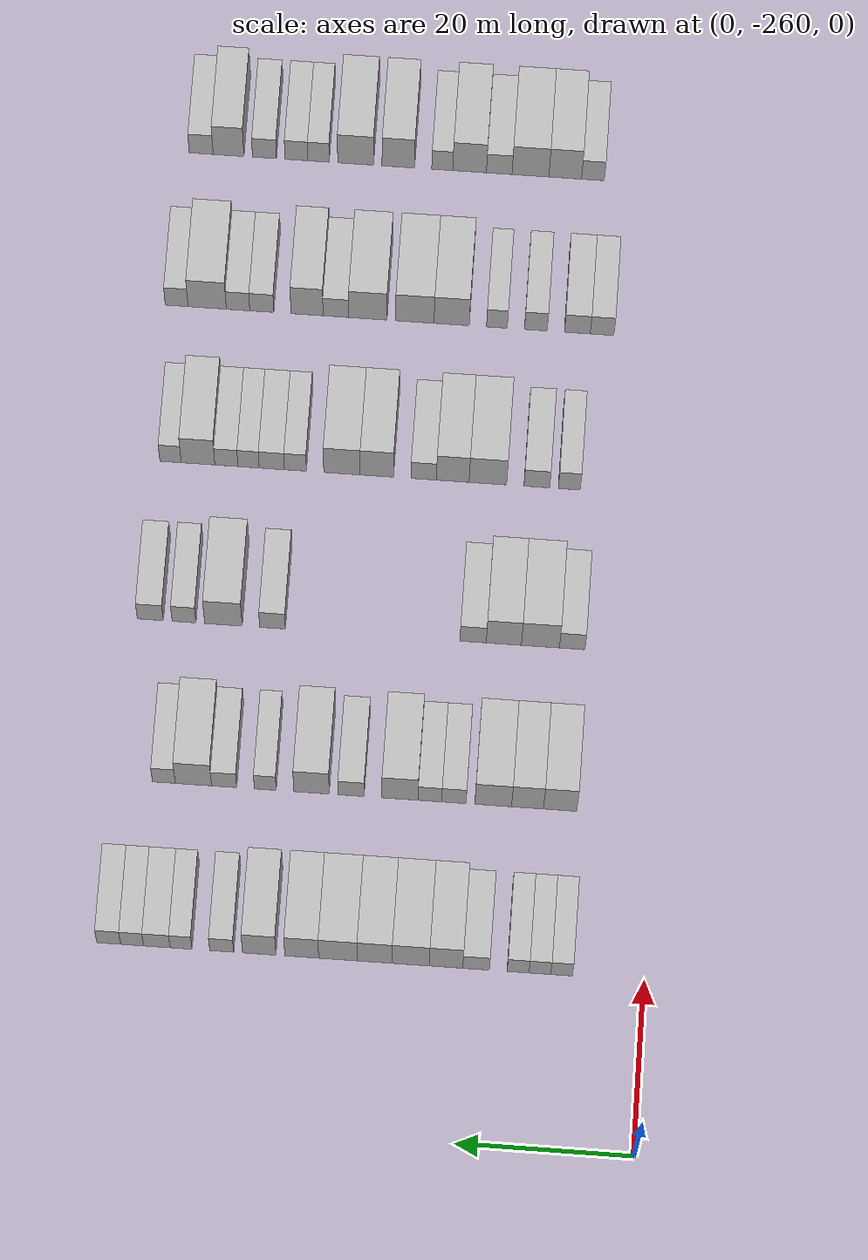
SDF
<sdf version="1.6">
 <world name="default">
  <model name="building_21">
   <static>1</static>
   <pose>25.0000 -250.6720 0 0.000000 0.000000 0.000000</pose>
   <link name="link">
    <pose>0 0 3.00 0 0 0</pose>
    <collision name="collision"><geometry><box><size>10.0000 2.4255 6.0000</size></box></geometry></collision>
    <visual name="visual">
     <cast_shadows>0</cast_shadows>
     <geometry><box><size>10.0000 2.4255 6.0000</size></box></geometry>
     <material>
      <script>
       <uri>model://HANNAS_wall/materials/scripts</uri>
       <uri>model://HANNAS_wall/materials/textures</uri>
       <name>vrc/HANNAS_wall</name>
      </script>
     </material>
    </visual>
   </link>
  </model>
  <model name="building_22">
   <static>1</static>
   <pose>25.0000 -248.2370 0 0.000000 0.000000 0.000000</pose>
   <link name="link">
    <pose>0 0 3.00 0 0 0</pose>
    <collision name="collision"><geometry><box><size>10.0000 2.4445 6.0000</size></box></geometry></collision>
    <visual name="visual">
     <cast_shadows>0</cast_shadows>
     <geometry><box><size>10.0000 2.4445 6.0000</size></box></geometry>
     <material>
      <script>
       <uri>model://HANNAS_wall/materials/scripts</uri>
       <uri>model://HANNAS_wall/materials/textures</uri>
       <name>vrc/HANNAS_wall</name>
      </script>
     </material>
    </visual>
   </link>
  </model>
  <model name="building_23">
   <static>1</static>
   <pose>25.0000 -245.7980 0 0.000000 0.000000 0.000000</pose>
   <link name="link">
    <pose>0 0 3.00 0 0 0</pose>
    <collision name="collision"><geometry><box><size>10.0000 2.4335 6.0000</size></box></geometry></collision>
    <visual name="visual">
     <cast_shadows>0</cast_shadows>
     <geometry><box><size>10.0000 2.4335 6.0000</size></box></geometry>
     <material>
      <script>
       <uri>model://HANNAS_wall/materials/scripts</uri>
       <uri>model://HANNAS_wall/materials/textures</uri>
       <name>vrc/HANNAS_wall</name>
      </script>
     </material>
    </visual>
   </link>
  </model>
  <model name="building_24">
   <static>1</static>
   <pose>25.0000 -241.0925 0 0.000000 0.000000 0.000000</pose>
   <link name="link">
    <pose>0 0 3.00 0 0 0</pose>
    <collision name="collision"><geometry><box><size>10.0000 2.9776 6.0000</size></box></geometry></collision>
    <visual name="visual">
     <cast_shadows>0</cast_shadows>
     <geometry><box><size>10.0000 2.9776 6.0000</size></box></geometry>
     <material>
      <script>
       <uri>model://HANNAS_wall/materials/scripts</uri>
       <uri>model://HANNAS_wall/materials/textures</uri>
       <name>vrc/HANNAS_wall</name>
      </script>
     </material>
    </visual>
   </link>
  </model>
  <model name="building_25">
   <static>1</static>
   <pose>25.0000 -237.7254 0 0.000000 0.000000 0.000000</pose>
   <link name="link">
    <pose>0 0 4.50 0 0 0</pose>
    <collision name="collision"><geometry><box><size>10.0000 3.7566 9.0000</size></box></geometry></collision>
    <visual name="visual">
     <cast_shadows>0</cast_shadows>
     <geometry><box><size>10.0000 3.7566 9.0000</size></box></geometry>
     <material>
      <script>
       <uri>model://HANNAS_wall/materials/scripts</uri>
       <uri>model://HANNAS_wall/materials/textures</uri>
       <name>vrc/HANNAS_wall</name>
      </script>
     </material>
    </visual>
   </link>
  </model>
  <model name="building_26">
   <static>1</static>
   <pose>25.0000 -233.7572 0 0.000000 0.000000 0.000000</pose>
   <link name="link">
    <pose>0 0 4.50 0 0 0</pose>
    <collision name="collision"><geometry><box><size>10.0000 4.1797 9.0000</size></box></geometry></collision>
    <visual name="visual">
     <cast_shadows>0</cast_shadows>
     <geometry><box><size>10.0000 4.1797 9.0000</size></box></geometry>
     <material>
      <script>
       <uri>model://HANNAS_wall/materials/scripts</uri>
       <uri>model://HANNAS_wall/materials/textures</uri>
       <name>vrc/HANNAS_wall</name>
      </script>
     </material>
    </visual>
   </link>
  </model>
  <model name="building_27">
   <static>1</static>
   <pose>25.0000 -229.7039 0 0.000000 0.000000 0.000000</pose>
   <link name="link">
    <pose>0 0 4.50 0 0 0</pose>
    <collision name="collision"><geometry><box><size>10.0000 3.9269 9.0000</size></box></geometry></collision>
    <visual name="visual">
     <cast_shadows>0</cast_shadows>
     <geometry><box><size>10.0000 3.9269 9.0000</size></box></geometry>
     <material>
      <script>
       <uri>model://HANNAS_wall/materials/scripts</uri>
       <uri>model://HANNAS_wall/materials/textures</uri>
       <name>vrc/HANNAS_wall</name>
      </script>
     </material>
    </visual>
   </link>
  </model>
  <model name="building_28">
   <static>1</static>
   <pose>25.0000 -225.5859 0 0.000000 0.000000 0.000000</pose>
   <link name="link">
    <pose>0 0 4.50 0 0 0</pose>
    <collision name="collision"><geometry><box><size>10.0000 4.3091 9.0000</size></box></geometry></collision>
    <visual name="visual">
     <cast_shadows>0</cast_shadows>
     <geometry><box><size>10.0000 4.3091 9.0000</size></box></geometry>
     <material>
      <script>
       <uri>model://HANNAS_wall/materials/scripts</uri>
       <uri>model://HANNAS_wall/materials/textures</uri>
       <name>vrc/HANNAS_wall</name>
      </script>
     </material>
    </visual>
   </link>
  </model>
  <model name="building_29">
   <static>1</static>
   <pose>25.0000 -221.5351 0 0.000000 0.000000 0.000000</pose>
   <link name="link">
    <pose>0 0 4.50 0 0 0</pose>
    <collision name="collision"><geometry><box><size>10.0000 3.7927 9.0000</size></box></geometry></collision>
    <visual name="visual">
     <cast_shadows>0</cast_shadows>
     <geometry><box><size>10.0000 3.7927 9.0000</size></box></geometry>
     <material>
      <script>
       <uri>model://HANNAS_wall/materials/scripts</uri>
       <uri>model://HANNAS_wall/materials/textures</uri>
       <name>vrc/HANNAS_wall</name>
      </script>
     </material>
    </visual>
   </link>
  </model>
  <model name="building_30">
   <static>1</static>
   <pose>25.0000 -216.7678 0 0.000000 0.000000 0.000000</pose>
   <link name="link">
    <pose>0 0 4.50 0 0 0</pose>
    <collision name="collision"><geometry><box><size>10.0000 3.7419 9.0000</size></box></geometry></collision>
    <visual name="visual">
     <cast_shadows>0</cast_shadows>
     <geometry><box><size>10.0000 3.7419 9.0000</size></box></geometry>
     <material>
      <script>
       <uri>model://HANNAS_wall/materials/scripts</uri>
       <uri>model://HANNAS_wall/materials/textures</uri>
       <name>vrc/HANNAS_wall</name>
      </script>
     </material>
    </visual>
   </link>
  </model>
  <model name="building_31">
   <static>1</static>
   <pose>25.0000 -212.5534 0 0.000000 0.000000 0.000000</pose>
   <link name="link">
    <pose>0 0 3.00 0 0 0</pose>
    <collision name="collision"><geometry><box><size>10.0000 2.6870 6.0000</size></box></geometry></collision>
    <visual name="visual">
     <cast_shadows>0</cast_shadows>
     <geometry><box><size>10.0000 2.6870 6.0000</size></box></geometry>
     <material>
      <script>
       <uri>model://HANNAS_wall/materials/scripts</uri>
       <uri>model://HANNAS_wall/materials/textures</uri>
       <name>vrc/HANNAS_wall</name>
      </script>
     </material>
    </visual>
   </link>
  </model>
  <model name="building_32">
   <static>1</static>
   <pose>25.0000 -207.9829 0 0.000000 0.000000 0.000000</pose>
   <link name="link">
    <pose>0 0 3.00 0 0 0</pose>
    <collision name="collision"><geometry><box><size>10.0000 2.4540 6.0000</size></box></geometry></collision>
    <visual name="visual">
     <cast_shadows>0</cast_shadows>
     <geometry><box><size>10.0000 2.4540 6.0000</size></box></geometry>
     <material>
      <script>
       <uri>model://HANNAS_wall/materials/scripts</uri>
       <uri>model://HANNAS_wall/materials/textures</uri>
       <name>vrc/HANNAS_wall</name>
      </script>
     </material>
    </visual>
   </link>
  </model>
  <model name="building_33">
   <static>1</static>
   <pose>25.0000 -205.2645 0 0.000000 0.000000 0.000000</pose>
   <link name="link">
    <pose>0 0 3.00 0 0 0</pose>
    <collision name="collision"><geometry><box><size>10.0000 2.9827 6.0000</size></box></geometry></collision>
    <visual name="visual">
     <cast_shadows>0</cast_shadows>
     <geometry><box><size>10.0000 2.9827 6.0000</size></box></geometry>
     <material>
      <script>
       <uri>model://HANNAS_wall/materials/scripts</uri>
       <uri>model://HANNAS_wall/materials/textures</uri>
       <name>vrc/HANNAS_wall</name>
      </script>
     </material>
    </visual>
   </link>
  </model>
  <model name="building_34">
   <static>1</static>
   <pose>25.0000 -202.4823 0 0.000000 0.000000 0.000000</pose>
   <link name="link">
    <pose>0 0 3.00 0 0 0</pose>
    <collision name="collision"><geometry><box><size>10.0000 2.5817 6.0000</size></box></geometry></collision>
    <visual name="visual">
     <cast_shadows>0</cast_shadows>
     <geometry><box><size>10.0000 2.5817 6.0000</size></box></geometry>
     <material>
      <script>
       <uri>model://HANNAS_wall/materials/scripts</uri>
       <uri>model://HANNAS_wall/materials/textures</uri>
       <name>vrc/HANNAS_wall</name>
      </script>
     </material>
    </visual>
   </link>
  </model>
  <model name="building_35">
   <static>1</static>
   <pose>25.0000 -199.8549 0 0.000000 0.000000 0.000000</pose>
   <link name="link">
    <pose>0 0 3.00 0 0 0</pose>
    <collision name="collision"><geometry><box><size>10.0000 2.6732 6.0000</size></box></geometry></collision>
    <visual name="visual">
     <cast_shadows>0</cast_shadows>
     <geometry><box><size>10.0000 2.6732 6.0000</size></box></geometry>
     <material>
      <script>
       <uri>model://HANNAS_wall/materials/scripts</uri>
       <uri>model://HANNAS_wall/materials/textures</uri>
       <name>vrc/HANNAS_wall</name>
      </script>
     </material>
    </visual>
   </link>
  </model>
  <model name="building_202">
   <static>1</static>
   <pose>44.0000 -249.3274 0 0.000000 0.000000 0.000000</pose>
   <link name="link">
    <pose>0 0 4.50 0 0 0</pose>
    <collision name="collision"><geometry><box><size>10.0000 3.7577 9.0000</size></box></geometry></collision>
    <visual name="visual">
     <cast_shadows>0</cast_shadows>
     <geometry><box><size>10.0000 3.7577 9.0000</size></box></geometry>
     <material>
      <script>
       <uri>model://HANNAS_wall/materials/scripts</uri>
       <uri>model://HANNAS_wall/materials/textures</uri>
       <name>vrc/HANNAS_wall</name>
      </script>
     </material>
    </visual>
   </link>
  </model>
  <model name="building_203">
   <static>1</static>
   <pose>44.0000 -245.6472 0 0.000000 0.000000 0.000000</pose>
   <link name="link">
    <pose>0 0 4.50 0 0 0</pose>
    <collision name="collision"><geometry><box><size>10.0000 3.6028 9.0000</size></box></geometry></collision>
    <visual name="visual">
     <cast_shadows>0</cast_shadows>
     <geometry><box><size>10.0000 3.6028 9.0000</size></box></geometry>
     <material>
      <script>
       <uri>model://HANNAS_wall/materials/scripts</uri>
       <uri>model://HANNAS_wall/materials/textures</uri>
       <name>vrc/HANNAS_wall</name>
      </script>
     </material>
    </visual>
   </link>
  </model>
  <model name="building_204">
   <static>1</static>
   <pose>44.0000 -241.7728 0 0.000000 0.000000 0.000000</pose>
   <link name="link">
    <pose>0 0 4.50 0 0 0</pose>
    <collision name="collision"><geometry><box><size>10.0000 4.1460 9.0000</size></box></geometry></collision>
    <visual name="visual">
     <cast_shadows>0</cast_shadows>
     <geometry><box><size>10.0000 4.1460 9.0000</size></box></geometry>
     <material>
      <script>
       <uri>model://HANNAS_wall/materials/scripts</uri>
       <uri>model://HANNAS_wall/materials/textures</uri>
       <name>vrc/HANNAS_wall</name>
      </script>
     </material>
    </visual>
   </link>
  </model>
  <model name="building_205">
   <static>1</static>
   <pose>44.0000 -237.3193 0 0.000000 0.000000 0.000000</pose>
   <link name="link">
    <pose>0 0 3.00 0 0 0</pose>
    <collision name="collision"><geometry><box><size>10.0000 2.7610 6.0000</size></box></geometry></collision>
    <visual name="visual">
     <cast_shadows>0</cast_shadows>
     <geometry><box><size>10.0000 2.7610 6.0000</size></box></geometry>
     <material>
      <script>
       <uri>model://HANNAS_wall/materials/scripts</uri>
       <uri>model://HANNAS_wall/materials/textures</uri>
       <name>vrc/HANNAS_wall</name>
      </script>
     </material>
    </visual>
   </link>
  </model>
  <model name="building_206">
   <static>1</static>
   <pose>44.0000 -234.5965 0 0.000000 0.000000 0.000000</pose>
   <link name="link">
    <pose>0 0 3.00 0 0 0</pose>
    <collision name="collision"><geometry><box><size>10.0000 2.6845 6.0000</size></box></geometry></collision>
    <visual name="visual">
     <cast_shadows>0</cast_shadows>
     <geometry><box><size>10.0000 2.6845 6.0000</size></box></geometry>
     <material>
      <script>
       <uri>model://HANNAS_wall/materials/scripts</uri>
       <uri>model://HANNAS_wall/materials/textures</uri>
       <name>vrc/HANNAS_wall</name>
      </script>
     </material>
    </visual>
   </link>
  </model>
  <model name="building_207">
   <static>1</static>
   <pose>44.0000 -231.2098 0 0.000000 0.000000 0.000000</pose>
   <link name="link">
    <pose>0 0 4.50 0 0 0</pose>
    <collision name="collision"><geometry><box><size>10.0000 4.0889 9.0000</size></box></geometry></collision>
    <visual name="visual">
     <cast_shadows>0</cast_shadows>
     <geometry><box><size>10.0000 4.0889 9.0000</size></box></geometry>
     <material>
      <script>
       <uri>model://HANNAS_wall/materials/scripts</uri>
       <uri>model://HANNAS_wall/materials/textures</uri>
       <name>vrc/HANNAS_wall</name>
      </script>
     </material>
    </visual>
   </link>
  </model>
  <model name="building_208">
   <static>1</static>
   <pose>44.0000 -225.6865 0 0.000000 0.000000 0.000000</pose>
   <link name="link">
    <pose>0 0 3.00 0 0 0</pose>
    <collision name="collision"><geometry><box><size>10.0000 2.9579 6.0000</size></box></geometry></collision>
    <visual name="visual">
     <cast_shadows>0</cast_shadows>
     <geometry><box><size>10.0000 2.9579 6.0000</size></box></geometry>
     <material>
      <script>
       <uri>model://HANNAS_wall/materials/scripts</uri>
       <uri>model://HANNAS_wall/materials/textures</uri>
       <name>vrc/HANNAS_wall</name>
      </script>
     </material>
    </visual>
   </link>
  </model>
  <model name="building_209">
   <static>1</static>
   <pose>44.0000 -221.2067 0 0.000000 0.000000 0.000000</pose>
   <link name="link">
    <pose>0 0 4.50 0 0 0</pose>
    <collision name="collision"><geometry><box><size>10.0000 4.0017 9.0000</size></box></geometry></collision>
    <visual name="visual">
     <cast_shadows>0</cast_shadows>
     <geometry><box><size>10.0000 4.0017 9.0000</size></box></geometry>
     <material>
      <script>
       <uri>model://HANNAS_wall/materials/scripts</uri>
       <uri>model://HANNAS_wall/materials/textures</uri>
       <name>vrc/HANNAS_wall</name>
      </script>
     </material>
    </visual>
   </link>
  </model>
  <model name="building_210">
   <static>1</static>
   <pose>44.0000 -215.9685 0 0.000000 0.000000 0.000000</pose>
   <link name="link">
    <pose>0 0 3.00 0 0 0</pose>
    <collision name="collision"><geometry><box><size>10.0000 2.4748 6.0000</size></box></geometry></collision>
    <visual name="visual">
     <cast_shadows>0</cast_shadows>
     <geometry><box><size>10.0000 2.4748 6.0000</size></box></geometry>
     <material>
      <script>
       <uri>model://HANNAS_wall/materials/scripts</uri>
       <uri>model://HANNAS_wall/materials/textures</uri>
       <name>vrc/HANNAS_wall</name>
      </script>
     </material>
    </visual>
   </link>
  </model>
  <model name="building_211">
   <static>1</static>
   <pose>44.0000 -211.3068 0 0.000000 0.000000 0.000000</pose>
   <link name="link">
    <pose>0 0 3.00 0 0 0</pose>
    <collision name="collision"><geometry><box><size>10.0000 2.8486 6.0000</size></box></geometry></collision>
    <visual name="visual">
     <cast_shadows>0</cast_shadows>
     <geometry><box><size>10.0000 2.8486 6.0000</size></box></geometry>
     <material>
      <script>
       <uri>model://HANNAS_wall/materials/scripts</uri>
       <uri>model://HANNAS_wall/materials/textures</uri>
       <name>vrc/HANNAS_wall</name>
      </script>
     </material>
    </visual>
   </link>
  </model>
  <model name="building_212">
   <static>1</static>
   <pose>44.0000 -207.8280 0 0.000000 0.000000 0.000000</pose>
   <link name="link">
    <pose>0 0 4.50 0 0 0</pose>
    <collision name="collision"><geometry><box><size>10.0000 4.1091 9.0000</size></box></geometry></collision>
    <visual name="visual">
     <cast_shadows>0</cast_shadows>
     <geometry><box><size>10.0000 4.1091 9.0000</size></box></geometry>
     <material>
      <script>
       <uri>model://HANNAS_wall/materials/scripts</uri>
       <uri>model://HANNAS_wall/materials/textures</uri>
       <name>vrc/HANNAS_wall</name>
      </script>
     </material>
    </visual>
   </link>
  </model>
  <model name="building_213">
   <static>1</static>
   <pose>44.0000 -204.4827 0 0.000000 0.000000 0.000000</pose>
   <link name="link">
    <pose>0 0 3.00 0 0 0</pose>
    <collision name="collision"><geometry><box><size>10.0000 2.5815 6.0000</size></box></geometry></collision>
    <visual name="visual">
     <cast_shadows>0</cast_shadows>
     <geometry><box><size>10.0000 2.5815 6.0000</size></box></geometry>
     <material>
      <script>
       <uri>model://HANNAS_wall/materials/scripts</uri>
       <uri>model://HANNAS_wall/materials/textures</uri>
       <name>vrc/HANNAS_wall</name>
      </script>
     </material>
    </visual>
   </link>
  </model>
  <model name="building_373">
   <static>1</static>
   <pose>63.0000 -249.5328 0 0.000000 0.000000 0.000000</pose>
   <link name="link">
    <pose>0 0 3.00 0 0 0</pose>
    <collision name="collision"><geometry><box><size>10.0000 2.9133 6.0000</size></box></geometry></collision>
    <visual name="visual">
     <cast_shadows>0</cast_shadows>
     <geometry><box><size>10.0000 2.9133 6.0000</size></box></geometry>
     <material>
      <script>
       <uri>model://HANNAS_wall/materials/scripts</uri>
       <uri>model://HANNAS_wall/materials/textures</uri>
       <name>vrc/HANNAS_wall</name>
      </script>
     </material>
    </visual>
   </link>
  </model>
  <model name="building_374">
   <static>1</static>
   <pose>63.0000 -245.9086 0 0.000000 0.000000 0.000000</pose>
   <link name="link">
    <pose>0 0 4.50 0 0 0</pose>
    <collision name="collision"><geometry><box><size>10.0000 4.3350 9.0000</size></box></geometry></collision>
    <visual name="visual">
     <cast_shadows>0</cast_shadows>
     <geometry><box><size>10.0000 4.3350 9.0000</size></box></geometry>
     <material>
      <script>
       <uri>model://HANNAS_wall/materials/scripts</uri>
       <uri>model://HANNAS_wall/materials/textures</uri>
       <name>vrc/HANNAS_wall</name>
      </script>
     </material>
    </visual>
   </link>
  </model>
  <model name="building_375">
   <static>1</static>
   <pose>63.0000 -241.7370 0 0.000000 0.000000 0.000000</pose>
   <link name="link">
    <pose>0 0 4.50 0 0 0</pose>
    <collision name="collision"><geometry><box><size>10.0000 4.0080 9.0000</size></box></geometry></collision>
    <visual name="visual">
     <cast_shadows>0</cast_shadows>
     <geometry><box><size>10.0000 4.0080 9.0000</size></box></geometry>
     <material>
      <script>
       <uri>model://HANNAS_wall/materials/scripts</uri>
       <uri>model://HANNAS_wall/materials/textures</uri>
       <name>vrc/HANNAS_wall</name>
      </script>
     </material>
    </visual>
   </link>
  </model>
  <model name="building_376">
   <static>1</static>
   <pose>63.0000 -238.2354 0 0.000000 0.000000 0.000000</pose>
   <link name="link">
    <pose>0 0 3.00 0 0 0</pose>
    <collision name="collision"><geometry><box><size>10.0000 2.9952 6.0000</size></box></geometry></collision>
    <visual name="visual">
     <cast_shadows>0</cast_shadows>
     <geometry><box><size>10.0000 2.9952 6.0000</size></box></geometry>
     <material>
      <script>
       <uri>model://HANNAS_wall/materials/scripts</uri>
       <uri>model://HANNAS_wall/materials/textures</uri>
       <name>vrc/HANNAS_wall</name>
      </script>
     </material>
    </visual>
   </link>
  </model>
  <model name="building_377">
   <static>1</static>
   <pose>63.0000 -215.3331 0 0.000000 0.000000 0.000000</pose>
   <link name="link">
    <pose>0 0 3.00 0 0 0</pose>
    <collision name="collision"><geometry><box><size>10.0000 2.9365 6.0000</size></box></geometry></collision>
    <visual name="visual">
     <cast_shadows>0</cast_shadows>
     <geometry><box><size>10.0000 2.9365 6.0000</size></box></geometry>
     <material>
      <script>
       <uri>model://HANNAS_wall/materials/scripts</uri>
       <uri>model://HANNAS_wall/materials/textures</uri>
       <name>vrc/HANNAS_wall</name>
      </script>
     </material>
    </visual>
   </link>
  </model>
  <model name="building_378">
   <static>1</static>
   <pose>63.0000 -209.7207 0 0.000000 0.000000 0.000000</pose>
   <link name="link">
    <pose>0 0 4.50 0 0 0</pose>
    <collision name="collision"><geometry><box><size>10.0000 4.2881 9.0000</size></box></geometry></collision>
    <visual name="visual">
     <cast_shadows>0</cast_shadows>
     <geometry><box><size>10.0000 4.2881 9.0000</size></box></geometry>
     <material>
      <script>
       <uri>model://HANNAS_wall/materials/scripts</uri>
       <uri>model://HANNAS_wall/materials/textures</uri>
       <name>vrc/HANNAS_wall</name>
      </script>
     </material>
    </visual>
   </link>
  </model>
  <model name="building_379">
   <static>1</static>
   <pose>63.0000 -205.2146 0 0.000000 0.000000 0.000000</pose>
   <link name="link">
    <pose>0 0 3.00 0 0 0</pose>
    <collision name="collision"><geometry><box><size>10.0000 2.7241 6.0000</size></box></geometry></collision>
    <visual name="visual">
     <cast_shadows>0</cast_shadows>
     <geometry><box><size>10.0000 2.7241 6.0000</size></box></geometry>
     <material>
      <script>
       <uri>model://HANNAS_wall/materials/scripts</uri>
       <uri>model://HANNAS_wall/materials/textures</uri>
       <name>vrc/HANNAS_wall</name>
      </script>
     </material>
    </visual>
   </link>
  </model>
  <model name="building_380">
   <static>1</static>
   <pose>63.0000 -201.3628 0 0.000000 0.000000 0.000000</pose>
   <link name="link">
    <pose>0 0 3.00 0 0 0</pose>
    <collision name="collision"><geometry><box><size>10.0000 2.9797 6.0000</size></box></geometry></collision>
    <visual name="visual">
     <cast_shadows>0</cast_shadows>
     <geometry><box><size>10.0000 2.9797 6.0000</size></box></geometry>
     <material>
      <script>
       <uri>model://HANNAS_wall/materials/scripts</uri>
       <uri>model://HANNAS_wall/materials/textures</uri>
       <name>vrc/HANNAS_wall</name>
      </script>
     </material>
    </visual>
   </link>
  </model>
  <model name="building_543">
   <static>1</static>
   <pose>82.0000 -248.0304 0 0.000000 0.000000 0.000000</pose>
   <link name="link">
    <pose>0 0 3.00 0 0 0</pose>
    <collision name="collision"><geometry><box><size>10.0000 2.5085 6.0000</size></box></geometry></collision>
    <visual name="visual">
     <cast_shadows>0</cast_shadows>
     <geometry><box><size>10.0000 2.5085 6.0000</size></box></geometry>
     <material>
      <script>
       <uri>model://HANNAS_wall/materials/scripts</uri>
       <uri>model://HANNAS_wall/materials/textures</uri>
       <name>vrc/HANNAS_wall</name>
      </script>
     </material>
    </visual>
   </link>
  </model>
  <model name="building_544">
   <static>1</static>
   <pose>82.0000 -244.3017 0 0.000000 0.000000 0.000000</pose>
   <link name="link">
    <pose>0 0 3.00 0 0 0</pose>
    <collision name="collision"><geometry><box><size>10.0000 2.9488 6.0000</size></box></geometry></collision>
    <visual name="visual">
     <cast_shadows>0</cast_shadows>
     <geometry><box><size>10.0000 2.9488 6.0000</size></box></geometry>
     <material>
      <script>
       <uri>model://HANNAS_wall/materials/scripts</uri>
       <uri>model://HANNAS_wall/materials/textures</uri>
       <name>vrc/HANNAS_wall</name>
      </script>
     </material>
    </visual>
   </link>
  </model>
  <model name="building_545">
   <static>1</static>
   <pose>82.0000 -238.6706 0 0.000000 0.000000 0.000000</pose>
   <link name="link">
    <pose>0 0 4.50 0 0 0</pose>
    <collision name="collision"><geometry><box><size>10.0000 4.3134 9.0000</size></box></geometry></collision>
    <visual name="visual">
     <cast_shadows>0</cast_shadows>
     <geometry><box><size>10.0000 4.3134 9.0000</size></box></geometry>
     <material>
      <script>
       <uri>model://HANNAS_wall/materials/scripts</uri>
       <uri>model://HANNAS_wall/materials/textures</uri>
       <name>vrc/HANNAS_wall</name>
      </script>
     </material>
    </visual>
   </link>
  </model>
  <model name="building_546">
   <static>1</static>
   <pose>82.0000 -234.6288 0 0.000000 0.000000 0.000000</pose>
   <link name="link">
    <pose>0 0 4.50 0 0 0</pose>
    <collision name="collision"><geometry><box><size>10.0000 3.7702 9.0000</size></box></geometry></collision>
    <visual name="visual">
     <cast_shadows>0</cast_shadows>
     <geometry><box><size>10.0000 3.7702 9.0000</size></box></geometry>
     <material>
      <script>
       <uri>model://HANNAS_wall/materials/scripts</uri>
       <uri>model://HANNAS_wall/materials/textures</uri>
       <name>vrc/HANNAS_wall</name>
      </script>
     </material>
    </visual>
   </link>
  </model>
  <model name="building_547">
   <static>1</static>
   <pose>82.0000 -231.2747 0 0.000000 0.000000 0.000000</pose>
   <link name="link">
    <pose>0 0 3.00 0 0 0</pose>
    <collision name="collision"><geometry><box><size>10.0000 2.9382 6.0000</size></box></geometry></collision>
    <visual name="visual">
     <cast_shadows>0</cast_shadows>
     <geometry><box><size>10.0000 2.9382 6.0000</size></box></geometry>
     <material>
      <script>
       <uri>model://HANNAS_wall/materials/scripts</uri>
       <uri>model://HANNAS_wall/materials/textures</uri>
       <name>vrc/HANNAS_wall</name>
      </script>
     </material>
    </visual>
   </link>
  </model>
  <model name="building_548">
   <static>1</static>
   <pose>82.0000 -225.8901 0 0.000000 0.000000 0.000000</pose>
   <link name="link">
    <pose>0 0 4.50 0 0 0</pose>
    <collision name="collision"><geometry><box><size>10.0000 3.8311 9.0000</size></box></geometry></collision>
    <visual name="visual">
     <cast_shadows>0</cast_shadows>
     <geometry><box><size>10.0000 3.8311 9.0000</size></box></geometry>
     <material>
      <script>
       <uri>model://HANNAS_wall/materials/scripts</uri>
       <uri>model://HANNAS_wall/materials/textures</uri>
       <name>vrc/HANNAS_wall</name>
      </script>
     </material>
    </visual>
   </link>
  </model>
  <model name="building_549">
   <static>1</static>
   <pose>82.0000 -221.8726 0 0.000000 0.000000 0.000000</pose>
   <link name="link">
    <pose>0 0 4.50 0 0 0</pose>
    <collision name="collision"><geometry><box><size>10.0000 4.2039 9.0000</size></box></geometry></collision>
    <visual name="visual">
     <cast_shadows>0</cast_shadows>
     <geometry><box><size>10.0000 4.2039 9.0000</size></box></geometry>
     <material>
      <script>
       <uri>model://HANNAS_wall/materials/scripts</uri>
       <uri>model://HANNAS_wall/materials/textures</uri>
       <name>vrc/HANNAS_wall</name>
      </script>
     </material>
    </visual>
   </link>
  </model>
  <model name="building_550">
   <static>1</static>
   <pose>82.0000 -216.5045 0 0.000000 0.000000 0.000000</pose>
   <link name="link">
    <pose>0 0 3.00 0 0 0</pose>
    <collision name="collision"><geometry><box><size>10.0000 2.5323 6.0000</size></box></geometry></collision>
    <visual name="visual">
     <cast_shadows>0</cast_shadows>
     <geometry><box><size>10.0000 2.5323 6.0000</size></box></geometry>
     <material>
      <script>
       <uri>model://HANNAS_wall/materials/scripts</uri>
       <uri>model://HANNAS_wall/materials/textures</uri>
       <name>vrc/HANNAS_wall</name>
      </script>
     </material>
    </visual>
   </link>
  </model>
  <model name="building_551">
   <static>1</static>
   <pose>82.0000 -213.7848 0 0.000000 0.000000 0.000000</pose>
   <link name="link">
    <pose>0 0 3.00 0 0 0</pose>
    <collision name="collision"><geometry><box><size>10.0000 2.9070 6.0000</size></box></geometry></collision>
    <visual name="visual">
     <cast_shadows>0</cast_shadows>
     <geometry><box><size>10.0000 2.9070 6.0000</size></box></geometry>
     <material>
      <script>
       <uri>model://HANNAS_wall/materials/scripts</uri>
       <uri>model://HANNAS_wall/materials/textures</uri>
       <name>vrc/HANNAS_wall</name>
      </script>
     </material>
    </visual>
   </link>
  </model>
  <model name="building_552">
   <static>1</static>
   <pose>82.0000 -211.1082 0 0.000000 0.000000 0.000000</pose>
   <link name="link">
    <pose>0 0 3.00 0 0 0</pose>
    <collision name="collision"><geometry><box><size>10.0000 2.4462 6.0000</size></box></geometry></collision>
    <visual name="visual">
     <cast_shadows>0</cast_shadows>
     <geometry><box><size>10.0000 2.4462 6.0000</size></box></geometry>
     <material>
      <script>
       <uri>model://HANNAS_wall/materials/scripts</uri>
       <uri>model://HANNAS_wall/materials/textures</uri>
       <name>vrc/HANNAS_wall</name>
      </script>
     </material>
    </visual>
   </link>
  </model>
  <model name="building_553">
   <static>1</static>
   <pose>82.0000 -208.5510 0 0.000000 0.000000 0.000000</pose>
   <link name="link">
    <pose>0 0 3.00 0 0 0</pose>
    <collision name="collision"><geometry><box><size>10.0000 2.6683 6.0000</size></box></geometry></collision>
    <visual name="visual">
     <cast_shadows>0</cast_shadows>
     <geometry><box><size>10.0000 2.6683 6.0000</size></box></geometry>
     <material>
      <script>
       <uri>model://HANNAS_wall/materials/scripts</uri>
       <uri>model://HANNAS_wall/materials/textures</uri>
       <name>vrc/HANNAS_wall</name>
      </script>
     </material>
    </visual>
   </link>
  </model>
  <model name="building_554">
   <static>1</static>
   <pose>82.0000 -205.2782 0 0.000000 0.000000 0.000000</pose>
   <link name="link">
    <pose>0 0 4.50 0 0 0</pose>
    <collision name="collision"><geometry><box><size>10.0000 3.8773 9.0000</size></box></geometry></collision>
    <visual name="visual">
     <cast_shadows>0</cast_shadows>
     <geometry><box><size>10.0000 3.8773 9.0000</size></box></geometry>
     <material>
      <script>
       <uri>model://HANNAS_wall/materials/scripts</uri>
       <uri>model://HANNAS_wall/materials/textures</uri>
       <name>vrc/HANNAS_wall</name>
      </script>
     </material>
    </visual>
   </link>
  </model>
  <model name="building_555">
   <static>1</static>
   <pose>82.0000 -202.1089 0 0.000000 0.000000 0.000000</pose>
   <link name="link">
    <pose>0 0 3.00 0 0 0</pose>
    <collision name="collision"><geometry><box><size>10.0000 2.4614 6.0000</size></box></geometry></collision>
    <visual name="visual">
     <cast_shadows>0</cast_shadows>
     <geometry><box><size>10.0000 2.4614 6.0000</size></box></geometry>
     <material>
      <script>
       <uri>model://HANNAS_wall/materials/scripts</uri>
       <uri>model://HANNAS_wall/materials/textures</uri>
       <name>vrc/HANNAS_wall</name>
      </script>
     </material>
    </visual>
   </link>
  </model>
  <model name="building_716">
   <static>1</static>
   <pose>101.0000 -250.6574 0 0.000000 0.000000 0.000000</pose>
   <link name="link">
    <pose>0 0 3.00 0 0 0</pose>
    <collision name="collision"><geometry><box><size>10.0000 2.7402 6.0000</size></box></geometry></collision>
    <visual name="visual">
     <cast_shadows>0</cast_shadows>
     <geometry><box><size>10.0000 2.7402 6.0000</size></box></geometry>
     <material>
      <script>
       <uri>model://HANNAS_wall/materials/scripts</uri>
       <uri>model://HANNAS_wall/materials/textures</uri>
       <name>vrc/HANNAS_wall</name>
      </script>
     </material>
    </visual>
   </link>
  </model>
  <model name="building_717">
   <static>1</static>
   <pose>101.0000 -247.7925 0 0.000000 0.000000 0.000000</pose>
   <link name="link">
    <pose>0 0 3.00 0 0 0</pose>
    <collision name="collision"><geometry><box><size>10.0000 2.9895 6.0000</size></box></geometry></collision>
    <visual name="visual">
     <cast_shadows>0</cast_shadows>
     <geometry><box><size>10.0000 2.9895 6.0000</size></box></geometry>
     <material>
      <script>
       <uri>model://HANNAS_wall/materials/scripts</uri>
       <uri>model://HANNAS_wall/materials/textures</uri>
       <name>vrc/HANNAS_wall</name>
      </script>
     </material>
    </visual>
   </link>
  </model>
  <model name="building_718">
   <static>1</static>
   <pose>101.0000 -242.9854 0 0.000000 0.000000 0.000000</pose>
   <link name="link">
    <pose>0 0 3.00 0 0 0</pose>
    <collision name="collision"><geometry><box><size>10.0000 2.6248 6.0000</size></box></geometry></collision>
    <visual name="visual">
     <cast_shadows>0</cast_shadows>
     <geometry><box><size>10.0000 2.6248 6.0000</size></box></geometry>
     <material>
      <script>
       <uri>model://HANNAS_wall/materials/scripts</uri>
       <uri>model://HANNAS_wall/materials/textures</uri>
       <name>vrc/HANNAS_wall</name>
      </script>
     </material>
    </visual>
   </link>
  </model>
  <model name="building_719">
   <static>1</static>
   <pose>101.0000 -238.4659 0 0.000000 0.000000 0.000000</pose>
   <link name="link">
    <pose>0 0 3.00 0 0 0</pose>
    <collision name="collision"><geometry><box><size>10.0000 2.4141 6.0000</size></box></geometry></collision>
    <visual name="visual">
     <cast_shadows>0</cast_shadows>
     <geometry><box><size>10.0000 2.4141 6.0000</size></box></geometry>
     <material>
      <script>
       <uri>model://HANNAS_wall/materials/scripts</uri>
       <uri>model://HANNAS_wall/materials/textures</uri>
       <name>vrc/HANNAS_wall</name>
      </script>
     </material>
    </visual>
   </link>
  </model>
  <model name="building_720">
   <static>1</static>
   <pose>101.0000 -233.2141 0 0.000000 0.000000 0.000000</pose>
   <link name="link">
    <pose>0 0 4.50 0 0 0</pose>
    <collision name="collision"><geometry><box><size>10.0000 4.0895 9.0000</size></box></geometry></collision>
    <visual name="visual">
     <cast_shadows>0</cast_shadows>
     <geometry><box><size>10.0000 4.0895 9.0000</size></box></geometry>
     <material>
      <script>
       <uri>model://HANNAS_wall/materials/scripts</uri>
       <uri>model://HANNAS_wall/materials/textures</uri>
       <name>vrc/HANNAS_wall</name>
      </script>
     </material>
    </visual>
   </link>
  </model>
  <model name="building_721">
   <static>1</static>
   <pose>101.0000 -228.9371 0 0.000000 0.000000 0.000000</pose>
   <link name="link">
    <pose>0 0 4.50 0 0 0</pose>
    <collision name="collision"><geometry><box><size>10.0000 4.4644 9.0000</size></box></geometry></collision>
    <visual name="visual">
     <cast_shadows>0</cast_shadows>
     <geometry><box><size>10.0000 4.4644 9.0000</size></box></geometry>
     <material>
      <script>
       <uri>model://HANNAS_wall/materials/scripts</uri>
       <uri>model://HANNAS_wall/materials/textures</uri>
       <name>vrc/HANNAS_wall</name>
      </script>
     </material>
    </visual>
   </link>
  </model>
  <model name="building_722">
   <static>1</static>
   <pose>101.0000 -223.4880 0 0.000000 0.000000 0.000000</pose>
   <link name="link">
    <pose>0 0 4.50 0 0 0</pose>
    <collision name="collision"><geometry><box><size>10.0000 4.4340 9.0000</size></box></geometry></collision>
    <visual name="visual">
     <cast_shadows>0</cast_shadows>
     <geometry><box><size>10.0000 4.4340 9.0000</size></box></geometry>
     <material>
      <script>
       <uri>model://HANNAS_wall/materials/scripts</uri>
       <uri>model://HANNAS_wall/materials/textures</uri>
       <name>vrc/HANNAS_wall</name>
      </script>
     </material>
    </visual>
   </link>
  </model>
  <model name="building_723">
   <static>1</static>
   <pose>101.0000 -219.7747 0 0.000000 0.000000 0.000000</pose>
   <link name="link">
    <pose>0 0 3.00 0 0 0</pose>
    <collision name="collision"><geometry><box><size>10.0000 2.9925 6.0000</size></box></geometry></collision>
    <visual name="visual">
     <cast_shadows>0</cast_shadows>
     <geometry><box><size>10.0000 2.9925 6.0000</size></box></geometry>
     <material>
      <script>
       <uri>model://HANNAS_wall/materials/scripts</uri>
       <uri>model://HANNAS_wall/materials/textures</uri>
       <name>vrc/HANNAS_wall</name>
      </script>
     </material>
    </visual>
   </link>
  </model>
  <model name="building_724">
   <static>1</static>
   <pose>101.0000 -216.4152 0 0.000000 0.000000 0.000000</pose>
   <link name="link">
    <pose>0 0 4.50 0 0 0</pose>
    <collision name="collision"><geometry><box><size>10.0000 3.7266 9.0000</size></box></geometry></collision>
    <visual name="visual">
     <cast_shadows>0</cast_shadows>
     <geometry><box><size>10.0000 3.7266 9.0000</size></box></geometry>
     <material>
      <script>
       <uri>model://HANNAS_wall/materials/scripts</uri>
       <uri>model://HANNAS_wall/materials/textures</uri>
       <name>vrc/HANNAS_wall</name>
      </script>
     </material>
    </visual>
   </link>
  </model>
  <model name="building_725">
   <static>1</static>
   <pose>101.0000 -211.1572 0 0.000000 0.000000 0.000000</pose>
   <link name="link">
    <pose>0 0 3.00 0 0 0</pose>
    <collision name="collision"><geometry><box><size>10.0000 2.7894 6.0000</size></box></geometry></collision>
    <visual name="visual">
     <cast_shadows>0</cast_shadows>
     <geometry><box><size>10.0000 2.7894 6.0000</size></box></geometry>
     <material>
      <script>
       <uri>model://HANNAS_wall/materials/scripts</uri>
       <uri>model://HANNAS_wall/materials/textures</uri>
       <name>vrc/HANNAS_wall</name>
      </script>
     </material>
    </visual>
   </link>
  </model>
  <model name="building_726">
   <static>1</static>
   <pose>101.0000 -208.3979 0 0.000000 0.000000 0.000000</pose>
   <link name="link">
    <pose>0 0 3.00 0 0 0</pose>
    <collision name="collision"><geometry><box><size>10.0000 2.7292 6.0000</size></box></geometry></collision>
    <visual name="visual">
     <cast_shadows>0</cast_shadows>
     <geometry><box><size>10.0000 2.7292 6.0000</size></box></geometry>
     <material>
      <script>
       <uri>model://HANNAS_wall/materials/scripts</uri>
       <uri>model://HANNAS_wall/materials/textures</uri>
       <name>vrc/HANNAS_wall</name>
      </script>
     </material>
    </visual>
   </link>
  </model>
  <model name="building_727">
   <static>1</static>
   <pose>101.0000 -204.8090 0 0.000000 0.000000 0.000000</pose>
   <link name="link">
    <pose>0 0 4.50 0 0 0</pose>
    <collision name="collision"><geometry><box><size>10.0000 4.4486 9.0000</size></box></geometry></collision>
    <visual name="visual">
     <cast_shadows>0</cast_shadows>
     <geometry><box><size>10.0000 4.4486 9.0000</size></box></geometry>
     <material>
      <script>
       <uri>model://HANNAS_wall/materials/scripts</uri>
       <uri>model://HANNAS_wall/materials/textures</uri>
       <name>vrc/HANNAS_wall</name>
      </script>
     </material>
    </visual>
   </link>
  </model>
  <model name="building_728">
   <static>1</static>
   <pose>101.0000 -201.2622 0 0.000000 0.000000 0.000000</pose>
   <link name="link">
    <pose>0 0 3.00 0 0 0</pose>
    <collision name="collision"><geometry><box><size>10.0000 2.6451 6.0000</size></box></geometry></collision>
    <visual name="visual">
     <cast_shadows>0</cast_shadows>
     <geometry><box><size>10.0000 2.6451 6.0000</size></box></geometry>
     <material>
      <script>
       <uri>model://HANNAS_wall/materials/scripts</uri>
       <uri>model://HANNAS_wall/materials/textures</uri>
       <name>vrc/HANNAS_wall</name>
      </script>
     </material>
    </visual>
   </link>
  </model>
  <model name="building_893">
   <static>1</static>
   <pose>120.0000 -248.4461 0 0.000000 0.000000 0.000000</pose>
   <link name="link">
    <pose>0 0 3.00 0 0 0</pose>
    <collision name="collision"><geometry><box><size>10.0000 2.6603 6.0000</size></box></geometry></collision>
    <visual name="visual">
     <cast_shadows>0</cast_shadows>
     <geometry><box><size>10.0000 2.6603 6.0000</size></box></geometry>
     <material>
      <script>
       <uri>model://HANNAS_wall/materials/scripts</uri>
       <uri>model://HANNAS_wall/materials/textures</uri>
       <name>vrc/HANNAS_wall</name>
      </script>
     </material>
    </visual>
   </link>
  </model>
  <model name="building_894">
   <static>1</static>
   <pose>120.0000 -245.2060 0 0.000000 0.000000 0.000000</pose>
   <link name="link">
    <pose>0 0 4.50 0 0 0</pose>
    <collision name="collision"><geometry><box><size>10.0000 3.8197 9.0000</size></box></geometry></collision>
    <visual name="visual">
     <cast_shadows>0</cast_shadows>
     <geometry><box><size>10.0000 3.8197 9.0000</size></box></geometry>
     <material>
      <script>
       <uri>model://HANNAS_wall/materials/scripts</uri>
       <uri>model://HANNAS_wall/materials/textures</uri>
       <name>vrc/HANNAS_wall</name>
      </script>
     </material>
    </visual>
   </link>
  </model>
  <model name="building_895">
   <static>1</static>
   <pose>120.0000 -241.1459 0 0.000000 0.000000 0.000000</pose>
   <link name="link">
    <pose>0 0 4.50 0 0 0</pose>
    <collision name="collision"><geometry><box><size>10.0000 4.3007 9.0000</size></box></geometry></collision>
    <visual name="visual">
     <cast_shadows>0</cast_shadows>
     <geometry><box><size>10.0000 4.3007 9.0000</size></box></geometry>
     <material>
      <script>
       <uri>model://HANNAS_wall/materials/scripts</uri>
       <uri>model://HANNAS_wall/materials/textures</uri>
       <name>vrc/HANNAS_wall</name>
      </script>
     </material>
    </visual>
   </link>
  </model>
  <model name="building_896">
   <static>1</static>
   <pose>120.0000 -237.4967 0 0.000000 0.000000 0.000000</pose>
   <link name="link">
    <pose>0 0 3.00 0 0 0</pose>
    <collision name="collision"><geometry><box><size>10.0000 2.9978 6.0000</size></box></geometry></collision>
    <visual name="visual">
     <cast_shadows>0</cast_shadows>
     <geometry><box><size>10.0000 2.9978 6.0000</size></box></geometry>
     <material>
      <script>
       <uri>model://HANNAS_wall/materials/scripts</uri>
       <uri>model://HANNAS_wall/materials/textures</uri>
       <name>vrc/HANNAS_wall</name>
      </script>
     </material>
    </visual>
   </link>
  </model>
  <model name="building_897">
   <static>1</static>
   <pose>120.0000 -234.0310 0 0.000000 0.000000 0.000000</pose>
   <link name="link">
    <pose>0 0 4.50 0 0 0</pose>
    <collision name="collision"><geometry><box><size>10.0000 3.9335 9.0000</size></box></geometry></collision>
    <visual name="visual">
     <cast_shadows>0</cast_shadows>
     <geometry><box><size>10.0000 3.9335 9.0000</size></box></geometry>
     <material>
      <script>
       <uri>model://HANNAS_wall/materials/scripts</uri>
       <uri>model://HANNAS_wall/materials/textures</uri>
       <name>vrc/HANNAS_wall</name>
      </script>
     </material>
    </visual>
   </link>
  </model>
  <model name="building_898">
   <static>1</static>
   <pose>120.0000 -230.8297 0 0.000000 0.000000 0.000000</pose>
   <link name="link">
    <pose>0 0 3.00 0 0 0</pose>
    <collision name="collision"><geometry><box><size>10.0000 2.4693 6.0000</size></box></geometry></collision>
    <visual name="visual">
     <cast_shadows>0</cast_shadows>
     <geometry><box><size>10.0000 2.4693 6.0000</size></box></geometry>
     <material>
      <script>
       <uri>model://HANNAS_wall/materials/scripts</uri>
       <uri>model://HANNAS_wall/materials/textures</uri>
       <name>vrc/HANNAS_wall</name>
      </script>
     </material>
    </visual>
   </link>
  </model>
  <model name="building_899">
   <static>1</static>
   <pose>120.0000 -225.6852 0 0.000000 0.000000 0.000000</pose>
   <link name="link">
    <pose>0 0 4.50 0 0 0</pose>
    <collision name="collision"><geometry><box><size>10.0000 3.8197 9.0000</size></box></geometry></collision>
    <visual name="visual">
     <cast_shadows>0</cast_shadows>
     <geometry><box><size>10.0000 3.8197 9.0000</size></box></geometry>
     <material>
      <script>
       <uri>model://HANNAS_wall/materials/scripts</uri>
       <uri>model://HANNAS_wall/materials/textures</uri>
       <name>vrc/HANNAS_wall</name>
      </script>
     </material>
    </visual>
   </link>
  </model>
  <model name="building_900">
   <static>1</static>
   <pose>120.0000 -220.6805 0 0.000000 0.000000 0.000000</pose>
   <link name="link">
    <pose>0 0 4.50 0 0 0</pose>
    <collision name="collision"><geometry><box><size>10.0000 4.1896 9.0000</size></box></geometry></collision>
    <visual name="visual">
     <cast_shadows>0</cast_shadows>
     <geometry><box><size>10.0000 4.1896 9.0000</size></box></geometry>
     <material>
      <script>
       <uri>model://HANNAS_wall/materials/scripts</uri>
       <uri>model://HANNAS_wall/materials/textures</uri>
       <name>vrc/HANNAS_wall</name>
      </script>
     </material>
    </visual>
   </link>
  </model>
  <model name="building_901">
   <static>1</static>
   <pose>120.0000 -216.3371 0 0.000000 0.000000 0.000000</pose>
   <link name="link">
    <pose>0 0 3.00 0 0 0</pose>
    <collision name="collision"><geometry><box><size>10.0000 2.4974 6.0000</size></box></geometry></collision>
    <visual name="visual">
     <cast_shadows>0</cast_shadows>
     <geometry><box><size>10.0000 2.4974 6.0000</size></box></geometry>
     <material>
      <script>
       <uri>model://HANNAS_wall/materials/scripts</uri>
       <uri>model://HANNAS_wall/materials/textures</uri>
       <name>vrc/HANNAS_wall</name>
      </script>
     </material>
    </visual>
   </link>
  </model>
  <model name="building_902">
   <static>1</static>
   <pose>120.0000 -213.7475 0 0.000000 0.000000 0.000000</pose>
   <link name="link">
    <pose>0 0 3.00 0 0 0</pose>
    <collision name="collision"><geometry><box><size>10.0000 2.6818 6.0000</size></box></geometry></collision>
    <visual name="visual">
     <cast_shadows>0</cast_shadows>
     <geometry><box><size>10.0000 2.6818 6.0000</size></box></geometry>
     <material>
      <script>
       <uri>model://HANNAS_wall/materials/scripts</uri>
       <uri>model://HANNAS_wall/materials/textures</uri>
       <name>vrc/HANNAS_wall</name>
      </script>
     </material>
    </visual>
   </link>
  </model>
  <model name="building_903">
   <static>1</static>
   <pose>120.0000 -210.0015 0 0.000000 0.000000 0.000000</pose>
   <link name="link">
    <pose>0 0 3.00 0 0 0</pose>
    <collision name="collision"><geometry><box><size>10.0000 2.8102 6.0000</size></box></geometry></collision>
    <visual name="visual">
     <cast_shadows>0</cast_shadows>
     <geometry><box><size>10.0000 2.8102 6.0000</size></box></geometry>
     <material>
      <script>
       <uri>model://HANNAS_wall/materials/scripts</uri>
       <uri>model://HANNAS_wall/materials/textures</uri>
       <name>vrc/HANNAS_wall</name>
      </script>
     </material>
    </visual>
   </link>
  </model>
  <model name="building_904">
   <static>1</static>
   <pose>120.0000 -205.7887 0 0.000000 0.000000 0.000000</pose>
   <link name="link">
    <pose>0 0 4.50 0 0 0</pose>
    <collision name="collision"><geometry><box><size>10.0000 3.6152 9.0000</size></box></geometry></collision>
    <visual name="visual">
     <cast_shadows>0</cast_shadows>
     <geometry><box><size>10.0000 3.6152 9.0000</size></box></geometry>
     <material>
      <script>
       <uri>model://HANNAS_wall/materials/scripts</uri>
       <uri>model://HANNAS_wall/materials/textures</uri>
       <name>vrc/HANNAS_wall</name>
      </script>
     </material>
    </visual>
   </link>
  </model>
  <model name="building_905">
   <static>1</static>
   <pose>120.0000 -202.5809 0 0.000000 0.000000 0.000000</pose>
   <link name="link">
    <pose>0 0 3.00 0 0 0</pose>
    <collision name="collision"><geometry><box><size>10.0000 2.8005 6.0000</size></box></geometry></collision>
    <visual name="visual">
     <cast_shadows>0</cast_shadows>
     <geometry><box><size>10.0000 2.8005 6.0000</size></box></geometry>
     <material>
      <script>
       <uri>model://HANNAS_wall/materials/scripts</uri>
       <uri>model://HANNAS_wall/materials/textures</uri>
       <name>vrc/HANNAS_wall</name>
      </script>
     </material>
    </visual>
   </link>
  </model>
 </world>
</sdf>
